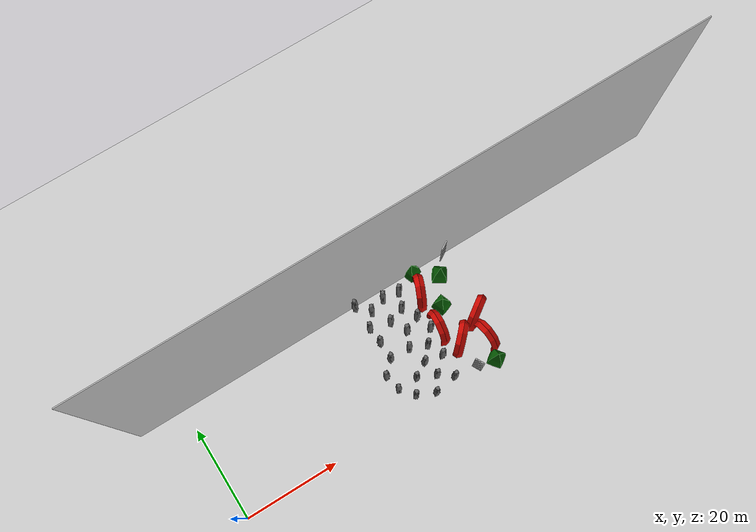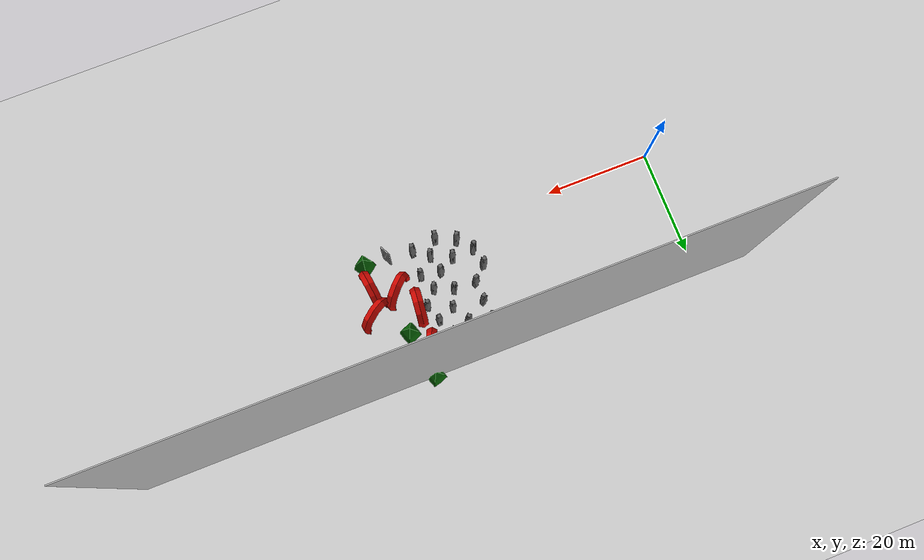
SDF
<sdf version="1.4">
 <world name="default">
  <model name="ground_plane">
   <static>1</static>
   <link name="link">
    <collision name="collision">
     <geometry><plane><normal>0 0 1</normal><size>1000 1000</size></plane></geometry>
     <surface>
      <contact><collide_bitmask>65535</collide_bitmask></contact>
      <friction><ode><mu>100</mu><mu2>50</mu2></ode></friction>
     </surface>
    </collision>
    <visual name="visual">
     <cast_shadows>0</cast_shadows>
     <geometry><plane><normal>0 0 1</normal><size>1000 1000</size></plane></geometry>
    </visual>
   </link>
  </model>
  <model name="wall_left">
   <static>1</static>
   <link name="link">
    <pose>0 0 25.0 0 0 0</pose>
    <collision name="collision"><geometry><box><size>120.0 0.2 50.0</size></box></geometry></collision>
    <visual name="visual">
     <cast_shadows>0</cast_shadows>
     <geometry><box><size>120.0 0.2 50.0</size></box></geometry>
    </visual>
   </link>
   <pose>50.0 25.0 0 0 0 0</pose>
  </model>
  <include><uri>model://sun</uri></include>
  <include>
   <name>columnSimple Stone142</name>
   <uri>model://Simple Stone</uri>
   <pose>38.01819610595703 5.547512054443359 0 0 0 5.9466939355</pose>
   <static>true</static>
  </include>
  <include>
   <name>columnSimple Stone143</name>
   <uri>model://Simple Stone</uri>
   <pose>37.34294891357422 8.98532485961914 0 0 0 4.77567750562</pose>
   <static>true</static>
  </include>
  <include>
   <name>columnSimple Stone144</name>
   <uri>model://Simple Stone</uri>
   <pose>39.582489013671875 18.893497467041016 0 0 0 1.0431459317</pose>
   <static>true</static>
  </include>
  <include>
   <name>columnSimple Stone145</name>
   <uri>model://Simple Stone</uri>
   <pose>39.357913970947266 24.21573257446289 0 0 0 2.31596328338</pose>
   <static>true</static>
  </include>
  <include>
   <name>columnSimple Stone150</name>
   <uri>model://Simple Stone</uri>
   <pose>40.30694580078125 2.7344226837158203 0 0 0 2.48713440581</pose>
   <static>true</static>
  </include>
  <include>
   <name>columnSimple Stone151</name>
   <uri>model://Simple Stone</uri>
   <pose>39.89156723022461 11.568183898925781 0 0 0 1.95978533148</pose>
   <static>true</static>
  </include>
  <include>
   <name>columnSimple Stone152</name>
   <uri>model://Simple Stone</uri>
   <pose>39.87246322631836 15.402019500732422 0 0 0 0.385754974528</pose>
   <static>true</static>
  </include>
  <include>
   <name>columnSimple Stone153</name>
   <uri>model://Simple Stone</uri>
   <pose>41.74422073364258 21.650569915771484 0 0 0 5.78260916149</pose>
   <static>true</static>
  </include>
  <include>
   <name>columnSimple Stone159</name>
   <uri>model://Simple Stone</uri>
   <pose>44.05844497680664 1.077219009399414 0 0 0 3.01668032584</pose>
   <static>true</static>
  </include>
  <include>
   <name>columnSimple Stone160</name>
   <uri>model://Simple Stone</uri>
   <pose>42.26057434082031 5.642658233642578 0 0 0 2.95544909277</pose>
   <static>true</static>
  </include>
  <include>
   <name>columnSimple Stone161</name>
   <uri>model://Simple Stone</uri>
   <pose>44.17330551147461 11.422294616699219 0 0 0 5.80744639883</pose>
   <static>true</static>
  </include>
  <include>
   <name>columnSimple Stone162</name>
   <uri>model://Simple Stone</uri>
   <pose>43.82941818237305 17.826126098632812 0 0 0 3.8697016816</pose>
   <static>true</static>
  </include>
  <include>
   <name>columnSimple Stone167</name>
   <uri>model://Simple Stone</uri>
   <pose>46.01731491088867 3.9819297790527344 0 0 0 1.24193262163</pose>
   <static>true</static>
  </include>
  <include>
   <name>columnSimple Stone168</name>
   <uri>model://Simple Stone</uri>
   <pose>45.28658676147461 7.408378601074219 0 0 0 1.85336979463</pose>
   <static>true</static>
  </include>
  <include>
   <name>columnSimple Stone169</name>
   <uri>model://Simple Stone</uri>
   <pose>45.671226501464844 14.589431762695312 0 0 0 4.61236779591</pose>
   <static>true</static>
  </include>
  <include>
   <name>columnSimple Stone170</name>
   <uri>model://Simple Stone</uri>
   <pose>45.060760498046875 22.779762268066406 0 0 0 5.72077828536</pose>
   <static>true</static>
  </include>
  <include>
   <name>columnSimple Stone176</name>
   <uri>model://Simple Stone</uri>
   <pose>48.807106018066406 1.8625946044921875 0 0 0 1.57695300989</pose>
   <static>true</static>
  </include>
  <include>
   <name>columnSimple Stone177</name>
   <uri>model://Simple Stone</uri>
   <pose>49.09821701049805 6.780988693237305 0 0 0 4.4456981681</pose>
   <static>true</static>
  </include>
  <include>
   <name>columnSimple Stone178</name>
   <uri>model://Simple Stone</uri>
   <pose>47.667137145996094 9.9788818359375 0 0 0 2.53032953953</pose>
   <static>true</static>
  </include>
  <include>
   <name>columnSimple Stone179</name>
   <uri>model://Simple Stone</uri>
   <pose>48.89597702026367 15.958911895751953 0 0 0 3.25027040631</pose>
   <static>true</static>
  </include>
  <include>
   <name>columnSimple Stone180</name>
   <uri>model://Simple Stone</uri>
   <pose>47.13479995727539 18.987567901611328 0 0 0 3.92227879348</pose>
   <static>true</static>
  </include>
  <include>
   <name>columnSimple Stone181</name>
   <uri>model://Simple Stone</uri>
   <pose>48.5171012878418 22.20684814453125 0 0 0 4.08911627784</pose>
   <static>true</static>
  </include>
  <include>
   <name>columnSimple Stone184</name>
   <uri>model://Simple Stone</uri>
   <pose>49.96590042114258 12.622779846191406 0 0 0 4.28838860451</pose>
   <static>true</static>
  </include>
  <include>
   <name>mixedfence_high4</name>
   <uri>model://fence_high</uri>
   <pose>53.36626672744751 2.1493968963623047 0 0 0 3.61999189546</pose>
   <static>true</static>
  </include>
  <include>
   <name>mixedSimple U5</name>
   <uri>model://Simple U</uri>
   <pose>51.463027000427246 11.960330963134766 0 0 0 4.60874661025</pose>
   <static>true</static>
  </include>
  <include>
   <name>mixedSimple U6</name>
   <uri>model://Simple U</uri>
   <pose>52.07318711280823 20.051158905029297 0 0 0 1.17524796289</pose>
   <static>true</static>
  </include>
  <include>
   <name>mixedSimple Pyramid7</name>
   <uri>model://Simple Pyramid</uri>
   <pose>53.12419891357422 24.944561004638672 0 0 0 4.2389789607</pose>
   <static>true</static>
  </include>
  <include>
   <name>mixedSimple U9</name>
   <uri>model://Simple U</uri>
   <pose>54.05796241760254 7.680572509765625 0 0 0 3.94348237297</pose>
   <static>true</static>
  </include>
  <include>
   <name>mixedSimple Pyramid10</name>
   <uri>model://Simple Pyramid</uri>
   <pose>54.69094800949097 15.785324096679688 0 0 0 4.27220267717</pose>
   <static>true</static>
  </include>
  <include>
   <name>mixedSimple Pyramid14</name>
   <uri>model://Simple Pyramid</uri>
   <pose>58.13609027862549 0.6332130432128906 0 0 0 2.98816608882</pose>
   <static>true</static>
  </include>
  <include>
   <name>mixedSimple U15</name>
   <uri>model://Simple U</uri>
   <pose>58.61687755584717 5.6150665283203125 0 0 0 4.82431530622</pose>
   <static>true</static>
  </include>
  <include>
   <name>mixedSimple U16</name>
   <uri>model://Simple U</uri>
   <pose>59.51746654510498 10.538375854492188 0 0 0 3.75267650642</pose>
   <static>true</static>
  </include>
  <include>
   <name>mixedSimple Pyramid17</name>
   <uri>model://Simple Pyramid</uri>
   <pose>57.731961727142334 21.30331802368164 0 0 0 0.217156007406</pose>
   <static>true</static>
  </include>
  <include>
   <name>mixedfence_high22</name>
   <uri>model://fence_high</uri>
   <pose>61.32177448272705 24.790904998779297 0 0 0 2.12446745218</pose>
   <static>true</static>
  </include>
 </world>
</sdf>
